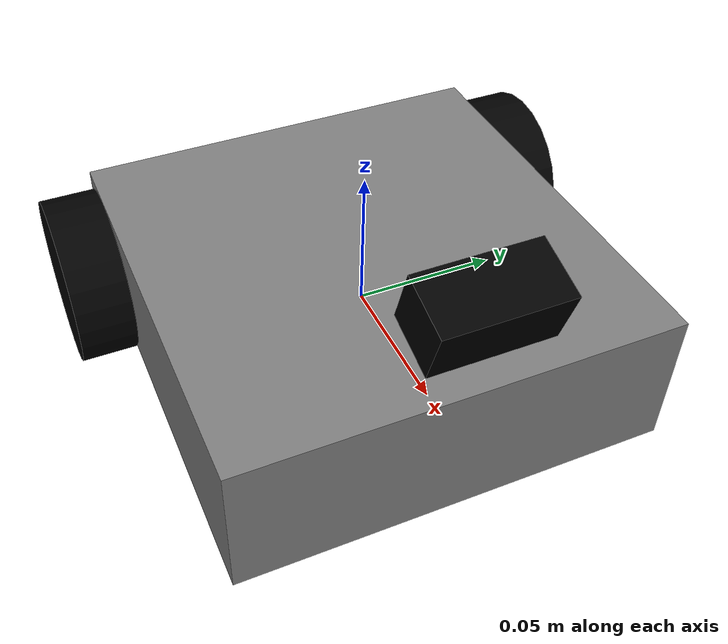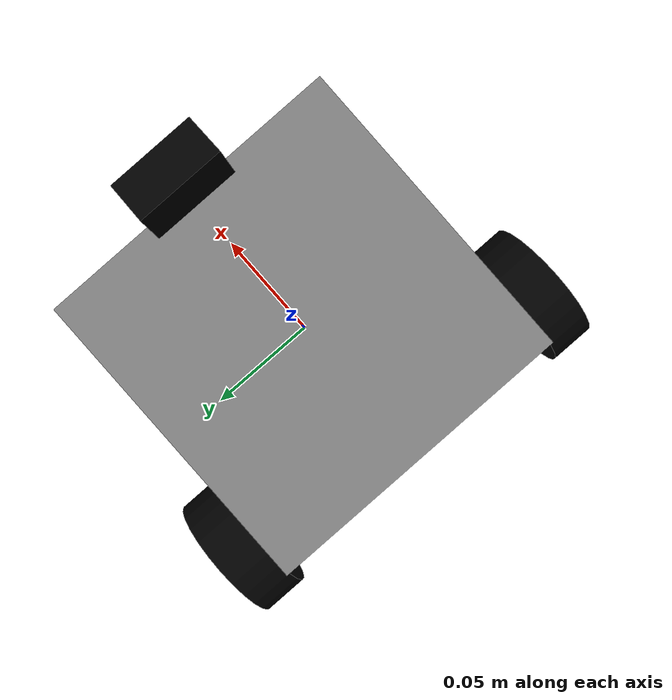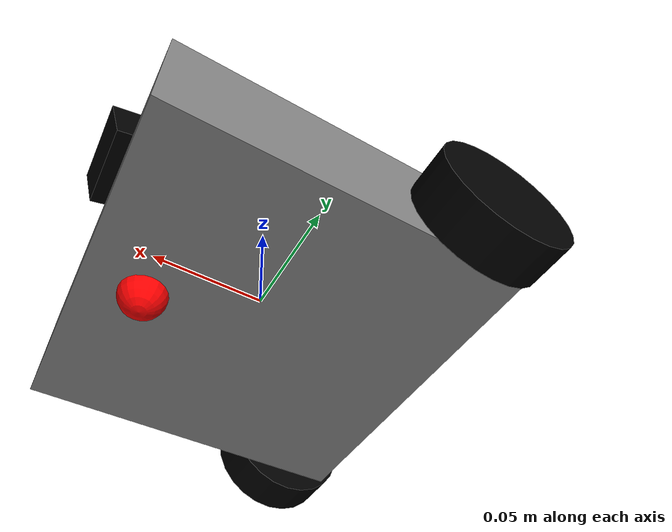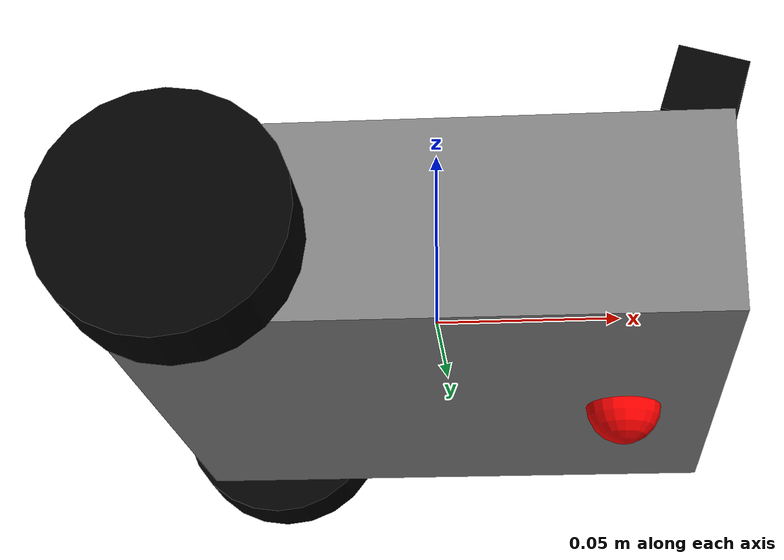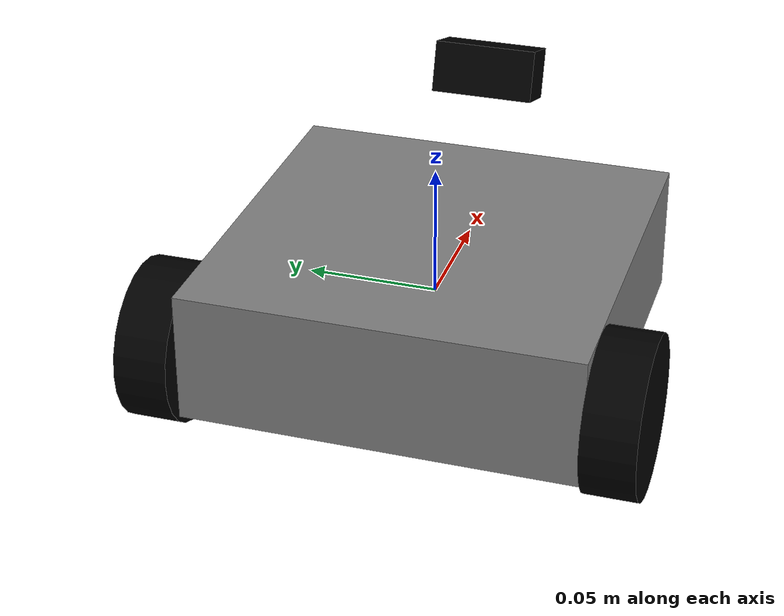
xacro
<?xml version="1.0"?>

<robot name="line_maze_solver" xmlns:xacro="http://www.ros.org/wiki/xacro">

    <xacro:include filename="camera.xacro"/>

    <link name="chassis">
        <visual>
            <origin xyz="0.0 0.0 0.0"/>
            <material name="grey">
                <color rgba="0.5 0.5 0.5 1"/>
            </material>
            <geometry>
                <box size="0.15 0.15 0.05"/>
            </geometry>
        </visual>
        <inertial>
            <mass value="3.0"/>
            <origin xyz="0.0 0.0 0.0" rpy="0.0 0.0 0.0" />
            <inertia ixx="0.01" ixy="0.0" ixz="0.0" iyy="0.01" iyz="0.0" izz="0.01"/>
        </inertial>
        <collision>
            <origin xyz="0.0 0.0 0.0" rpy="0.0 0.0 0.0" />
            <geometry>
                <box size="0.15 0.15 0.05"/>
            </geometry>
        </collision>

        <gazebo reference="chassis">
            <material>Gazebo/Grey</material>
            <selfCollide>true</selfCollide>
        </gazebo>

    </link>

    <link name="right_wheel">
        <visual>
            <geometry>
                <cylinder radius="0.03" length="0.02"/>
            </geometry>
            <origin xyz="0 0 0" rpy="1.57 0.0 0.0" />
            <material name="black">
                <color rgba="0 0 0 1"/>
            </material>
        </visual>
        <collision>
            <geometry>
                <cylinder radius="0.03" length="0.02"/>
            </geometry>
            <origin xyz="0 0 0" rpy="1.57 0.0 0.0" />
        </collision>
        <inertial>
            <mass value="1"/>
            <origin xyz="0 0 0" rpy="0 0 0"/>
            <inertia ixx="0.0001" ixy="0.0" ixz="0.0" iyy="0.0001" iyz="0.0" izz="0.0001"/>
        </inertial>
        <gazebo reference="right_wheel">
            <material>Gazebo/Black</material>
            <selfCollide>true</selfCollide>
            <mu1>1.0</mu1>
            <mu2>1.0</mu2>
        </gazebo>

    </link>

    <link name="left_wheel">
        <visual>
            <origin xyz="0 0 0" rpy=" 1.57 0.0 0.0" />
            <geometry>
                <cylinder radius="0.03" length="0.02"/>
            </geometry>
                <material name="black">
                    <color rgba="0 0 0 1"/>

                </material>
        </visual>
               <collision>
            <geometry>
                <cylinder radius="0.03" length="0.02"/>
            </geometry>
            <origin xyz="0 0 0" rpy="1.57 0.0 0.0" />
        </collision>
        <inertial>
            <mass value="1"/>
            <origin xyz="0 0 0" rpy="0 0 0"/>
            <inertia ixx="0.0001" ixy="0.0" ixz="0.0" iyy="0.0001" iyz="0.0" izz="0.0001"/>
        </inertial>
        <gazebo reference="left_wheel">
            <material>Gazebo/Black</material>
            <selfCollide>true</selfCollide>
            <mu1>1.0</mu1>
            <mu2>1.0</mu2>
        </gazebo>

    </link>

    <link name="castor_wheel">
        <visual>
            <origin xyz="0 0 0" />
                <geometry>
                    <sphere radius="0.01"/>
                </geometry>
                <material name="red">
                    <color rgba="1 0 0 1"/>
                </material>
        </visual>
        <collision>
            <geometry>
                <sphere radius="0.01"/>
                <origin xyz="0.0 0.0 0.0" />
            </geometry>
        </collision>
        <inertial>
            <mass value="0.01"/>
            <origin xyz="0 0 0" rpy="0 0 0"/>
            <inertia ixx="0.00001" ixy="0.0" ixz="0.0" iyy="0.00001" iyz="0.0" izz="0.00001"/>
        </inertial>

        <gazebo reference="castor_wheel">
            <material>Gazebo/Red</material>

        </gazebo>

    </link>

    <link name="castor_wheel_lateral">
        <visual>
            <origin xyz="0 0 0" />
                <geometry>
                    <sphere radius="0.01"/>
                </geometry>
                <material name="red">
                    <color rgba="1 0 0 1"/>
                </material>
        </visual>
        <collision>
            <geometry>
                <sphere radius="0.01"/>
                <origin xyz="0.0 0.0 0.0" />
            </geometry>
        </collision>
        <inertial>
            <mass value="0.01"/>
            <origin xyz="0 0 0" rpy="0 0 0"/>
            <inertia ixx="0.00001" ixy="0.0" ixz="0.0" iyy="0.00001" iyz="0.0" izz="0.00001"/>
        </inertial>

        <gazebo reference="castor_wheel">
            <material>Gazebo/Red</material>

        </gazebo>

    </link>

    <!-- joint ahead -->

    <joint name="left_wheel_joint" type="continuous">
        <parent link="chassis"/>
        <child link="left_wheel"/>
        <origin xyz="-0.055 0.085 -0.005" />
        <axis xyz="0 1 0"/>
    </joint>

     <joint name="right_wheel_joint" type="continuous">
        <parent link="chassis"/>
        <child link="right_wheel"/>
        <origin xyz="-0.055 -0.085 -0.005" />
        <axis xyz="0 1 0"/>
    </joint>

    <joint name="castor_wheel_joint" type="continuous">
        <parent link="chassis"/>
        <child link="castor_wheel_lateral"/>
        <origin xyz="0.050 0 -0.025" />
        <axis xyz="0 1 0"/>
    </joint>
    <joint name="castor_wheel_joint_lateral" type="continuous">
        <parent link="chassis"/>
        <child link="castor_wheel"/>
        <origin xyz="0.050 0 -0.025" />
        <axis xyz="1 0 0"/>
    </joint>

    <!-- ROBOT MOVEMENT STUFF AHEAD  -->

    <gazebo>
        <plugin name="differential_drive_controller" filename="libgazebo_ros_diff_drive.so" >
            <ros>
                <remapping>cmd_vel:=cmd_vel</remapping>
            </ros>
            <left_joint>left_wheel_joint</left_joint>
            <right_joint>right_wheel_joint</right_joint>
            <wheel_separation>0.17</wheel_separation>
            <wheel_diameter>0.06</wheel_diameter>
            <publish_odom>true</publish_odom>
            <odom_frame>odom</odom_frame>
            <robot_base_frame>chassis</robot_base_frame>
        </plugin>
    </gazebo>

</robot>

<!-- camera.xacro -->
<robot xmlns:xacro="http://www.ros.org/wiki/xacro" >

    <joint name="camera_joint" type="fixed">
        <parent link="chassis"/>
        <child link="camera_link"/>
        <origin xyz="0.075 0 0.06" rpy="0 0.3 0" />
    </joint>

    <link name="camera_link">
          <visual>
            <origin xyz="0 0 0"/>
            <geometry>
              <box size="0.02 0.04 0.02"/>
        </geometry>
            <material name="black">
              <color rgba="0 0 0 1"/>
        </material>
      </visual>

    </link>

    <gazebo reference="camera_link">
        <sensor name="camera_sensor" type="camera">
            <camera>
                <image>
                    <horizontal_fov>2.047</horizontal_fov>
                    <clip>5</clip>
                    <update_rate>30</update_rate>
                    <vertical_fov>0.785</vertical_fov>

                    <width>800</width>
                    <height>600</height>
                    <format>R8G8B8</format>
                </image>

            </camera>
            <visualize>true</visualize>
            <plugin name="camera_controller" filename="libgazebo_ros_camera.so">
                <frame_name>camera_link</frame_name>
            </plugin>

        </sensor>

    </gazebo>

</robot>
